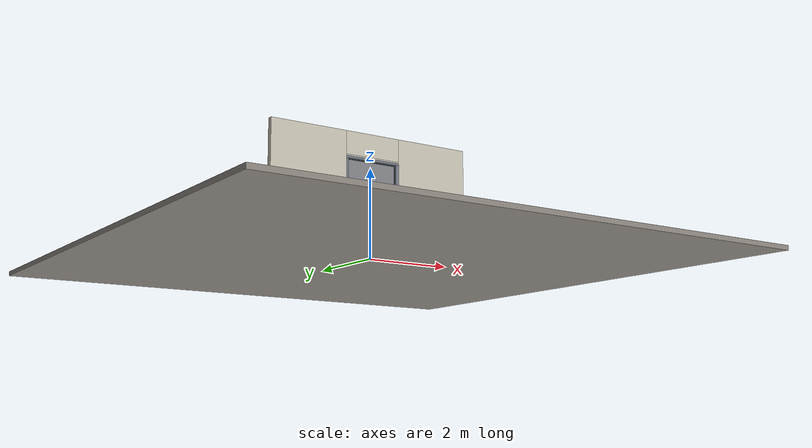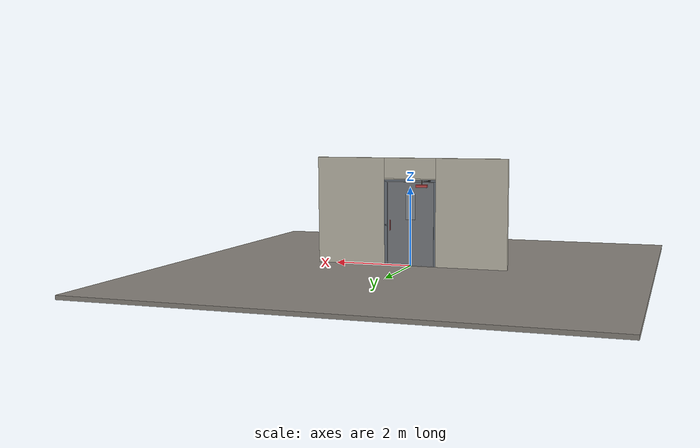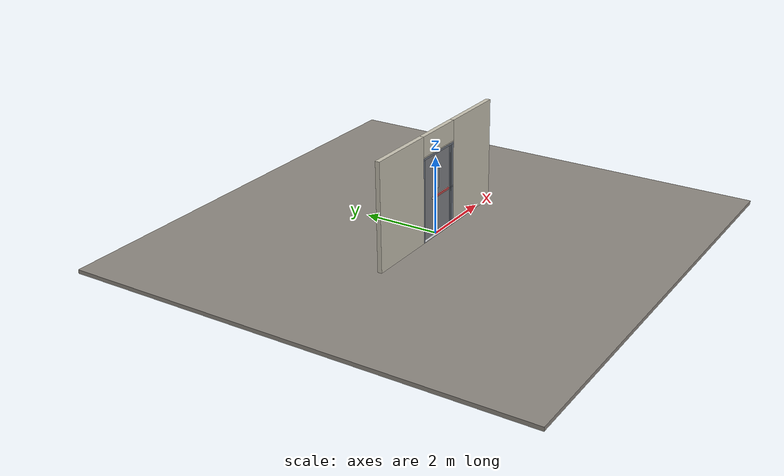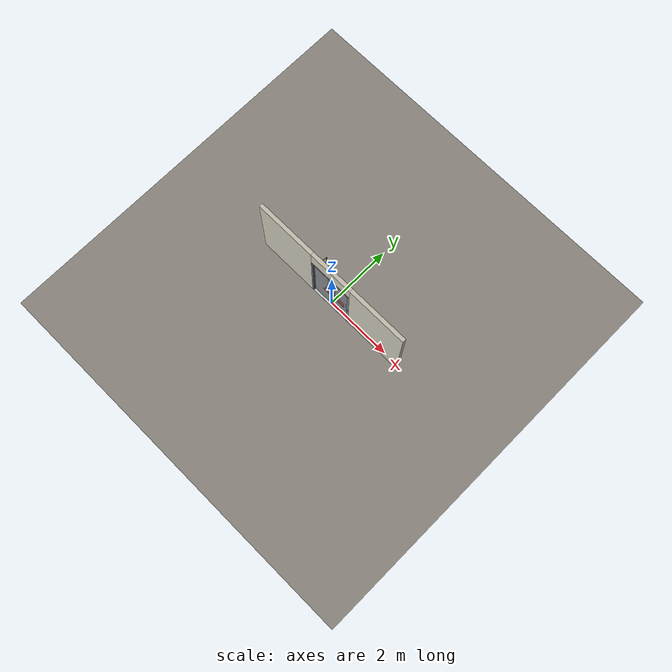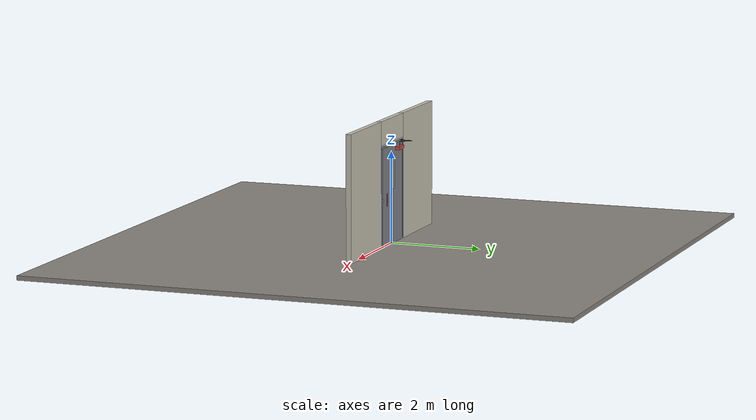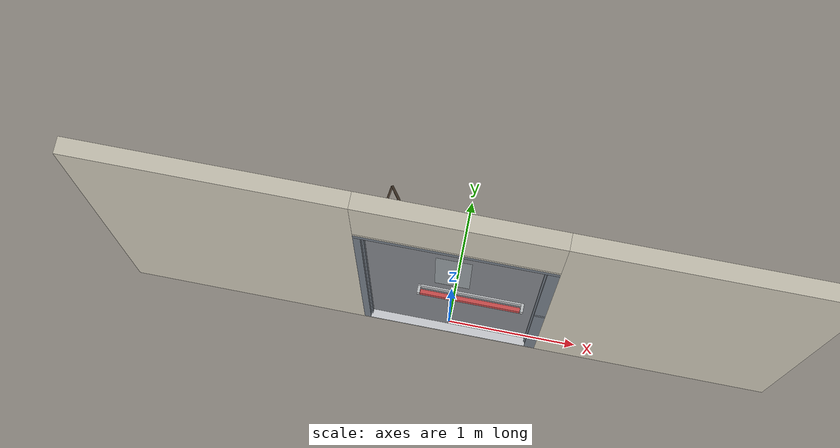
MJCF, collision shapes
<?xml version="1.0" ?>
<mujoco model="db0802_swing_single_full">
  <compiler angle="radian" meshdir="../../hardware" texturedir="../../textures" autolimits="true" inertiafromgeom="false"/>
  <option timestep="0.002" integrator="implicitfast" cone="elliptic" impratio="10" noslip_iterations="3">
    <flag multiccd="enable"/>
  </option>
  <size memory="16M"/>
  <default>
    <geom condim="4" solref="0.005 1" solimp="0.95 0.99 0.001"/>
    <joint solreflimit="0.005 1" solimplimit="0.95 0.99 0.001"/>
    <tendon solreflimit="0.005 1"/>
    <equality solref="0.002 1"/>
  </default>
  <visual>
    <headlight ambient="0.4 0.4 0.4" diffuse="0.7 0.7 0.7" specular="0.2 0.2 0.2"/>
    <quality shadowsize="4096"/>
    <map znear="0.01" zfar="60"/>
  </visual>
  <asset>
    <mesh name="closer_body_fdc4667657" file="closer_body_fdc4667657.obj"/>
    <mesh name="hinge_e22b26c0c1" file="hinge_e22b26c0c1.obj"/>
    <mesh name="hinge_jamb_e1d088f8dc" file="hinge_jamb_e1d088f8dc.obj"/>
    <mesh name="pull_f8d79d6331" file="pull_f8d79d6331.obj"/>
    <mesh name="touchbar_pad_75ca639615" file="touchbar_pad_75ca639615.obj"/>
    <material name="mat_floor" rgba="0.55 0.53 0.5 1" specular="0.2" shininess="0.15" reflectance="0"/>
    <material name="mat_wall" rgba="0.78 0.76 0.7 1" specular="0.2" shininess="0.1" reflectance="0"/>
    <material name="mat_leaf" rgba="0.5 0.51 0.53 1" specular="0.23" shininess="0.4" reflectance="0.02"/>
    <material name="mat_glass" rgba="0.85 0.92 0.95 0.25" specular="0.2" shininess="0.95" reflectance="0.1"/>
    <material name="mat_hinge" rgba="0.65 0.66 0.68 1" specular="0.74" shininess="0.5" reflectance="0.36"/>
    <material name="mat_op_stainless" rgba="0.75 0.76 0.77 1" specular="0.8" shininess="0.65" reflectance="0.4"/>
    <material name="mat_bolt" rgba="0.75 0.76 0.77 1" specular="0.8" shininess="0.65" reflectance="0.4"/>
    <material name="mat_frame" rgba="0.45 0.48 0.52 1" specular="0.32" shininess="0.6" reflectance="0.08"/>
    <material name="mat_seal" rgba="0.1 0.1 0.1 1" specular="0.2" shininess="0.1" reflectance="0"/>
    <material name="mat_threshold" rgba="0.8 0.81 0.83 1" specular="0.8" shininess="0.6" reflectance="0.4"/>
    <material name="mat_closer" rgba="0.22 0.17 0.13 1" specular="0.8" shininess="0.6" reflectance="0.4"/>
    <texture name="skybox" type="skybox" builtin="gradient" rgb1="0.6 0.7 0.85" rgb2="0.9 0.92 0.95" width="256" height="256"/>
  </asset>
  <worldbody>
    <light name="sun" pos="1.5 -2.5 4" dir="-0.3 0.5 -0.8" directional="true" diffuse="0.8 0.8 0.8" specular="0.3 0.3 0.3" castshadow="true"/>
    <light name="fill" pos="-1.5 2.5 3" dir="0.3 -0.5 -0.7" directional="true" diffuse="0.35 0.35 0.4" castshadow="false"/>
    <camera name="robot_view" pos="0 -2.666313 1.812087" xyaxes="1 0 0 0 0.26963 0.962964" fovy="52"/>
    <camera name="far_view" pos="0 2.609312 1.812087" xyaxes="-1 0 0 0 -0.26963 0.962964" fovy="52"/>
    <camera name="iso" pos="2.004737 -2.244263 2.234138" xyaxes="0.741536 0.670913 0 -0.242917 0.268487 0.932151" fovy="46"/>
    <camera name="detail_handle" pos="0.699 -0.703 1.32" xyaxes="0.97561 0.219512 0 -0.070934 0.315262 0.94635" fovy="38"/>
    <geom name="floor" type="box" size="6 6 0.05" pos="0 0 -0.05" material="mat_floor" group="0" contype="1" conaffinity="1" friction="0.8 0.005 0.0001" density="2400"/>
    <geom name="wall_left" type="box" size="0.9185 0.0575 1.3735" pos="-1.5815 -0.0285 1.3735" material="mat_wall" group="0" contype="1" conaffinity="1" friction="0.6 0.005 0.0001" density="800"/>
    <geom name="wall_right" type="box" size="0.9035 0.0575 1.3735" pos="1.5965 -0.0285 1.3735" material="mat_wall" group="0" contype="1" conaffinity="1" friction="0.6 0.005 0.0001" density="800"/>
    <geom name="wall_header" type="box" size="0.678 0.0575 0.26" pos="0.015 -0.0285 2.487" material="mat_wall" group="0" contype="1" conaffinity="1" friction="0.6 0.005 0.0001" density="800"/>
    <geom name="hinge_0_jamb" type="mesh" mesh="hinge_jamb_e1d088f8dc" pos="-0.61 0.029 0.267" quat="0 1 0 0" material="mat_hinge" group="1" contype="0" conaffinity="0" density="7850"/>
    <geom name="hinge_1_jamb" type="mesh" mesh="hinge_jamb_e1d088f8dc" pos="-0.61 0.029 1.08" quat="0 1 0 0" material="mat_hinge" group="1" contype="0" conaffinity="0" density="7850"/>
    <geom name="hinge_2_jamb" type="mesh" mesh="hinge_jamb_e1d088f8dc" pos="-0.61 0.029 1.963" quat="0 1 0 0" material="mat_hinge" group="1" contype="0" conaffinity="0" density="7850"/>
    <geom name="jamb_hinge" type="box" size="0.025 0.0575 1.0735" pos="-0.638 -0.0285 1.0735" material="mat_frame" group="0" contype="1" conaffinity="1" friction="0.6 0.005 0.0001" density="300"/>
    <geom name="strike_1040_wall_n" type="box" size="0.04 0.03825 0.018" pos="0.653 -0.04775 1.04" material="mat_frame" group="0" contype="1" conaffinity="1" friction="0.6 0.005 0.0001" density="300"/>
    <geom name="strike_1040_wall_p" type="box" size="0.04 0.008 0.018" pos="0.653 0.0175 1.04" material="mat_frame" group="0" contype="1" conaffinity="1" friction="0.6 0.005 0.0001" density="300"/>
    <geom name="strike_1040_ramp" type="box" size="0.04 0.018028 0.018" pos="0.656282 0.018312 1.04" quat="0.957092 0 0 -0.289784" material="mat_frame" group="0" contype="1" conaffinity="1" friction="0.12 0.005 0.0001" density="300"/>
    <geom name="strike_1040_back" type="box" size="0.0285 0.0095 0.018" pos="0.6645 0 1.04" material="mat_frame" group="0" contype="1" conaffinity="1" friction="0.6 0.005 0.0001" density="300"/>
    <geom name="jamb_strike_0" type="box" size="0.04 0.0575 0.511" pos="0.653 -0.0285 0.511" material="mat_frame" group="0" contype="1" conaffinity="1" friction="0.6 0.005 0.0001" density="300"/>
    <geom name="jamb_strike_1" type="box" size="0.04 0.0575 0.5445" pos="0.653 -0.0285 1.6025" material="mat_frame" group="0" contype="1" conaffinity="1" friction="0.6 0.005 0.0001" density="300"/>
    <geom name="jamb_head" type="box" size="0.678 0.0575 0.025" pos="0.015 -0.0285 2.172" material="mat_frame" group="0" contype="1" conaffinity="1" friction="0.6 0.005 0.0001" density="300"/>
    <geom name="head_stud" type="box" size="0.678 0.0575 0.015" pos="0.015 -0.0285 2.212" material="mat_wall" group="0" contype="1" conaffinity="1" friction="0.6 0.005 0.0001" density="500"/>
    <geom name="stop_hinge" type="box" size="0.0055 0.016 1.0735" pos="-0.6075 -0.0385 1.0735" material="mat_frame" group="0" contype="1" conaffinity="1" friction="0.6 0.005 0.0001" density="300"/>
    <geom name="stop_strike" type="box" size="0.0055 0.016 1.0735" pos="0.6075 -0.0385 1.0735" material="mat_frame" group="0" contype="1" conaffinity="1" friction="0.6 0.005 0.0001" density="300"/>
    <geom name="stop_head" type="box" size="0.613 0.016 0.0055" pos="0 -0.0385 2.1415" material="mat_frame" group="0" contype="1" conaffinity="1" friction="0.6 0.005 0.0001" density="300"/>
    <geom name="seal_hinge" type="box" size="0.004 0.004 1.0735" pos="-0.61 -0.026 1.0735" material="mat_seal" group="1" contype="0" conaffinity="0" density="1100"/>
    <geom name="seal_strike" type="box" size="0.004 0.004 1.0735" pos="0.61 -0.026 1.0735" material="mat_seal" group="1" contype="0" conaffinity="0" density="1100"/>
    <geom name="seal_head" type="box" size="0.593 0.004 0.008" pos="0 -0.026 2.135" material="mat_seal" group="1" contype="0" conaffinity="0" density="1100"/>
    <geom name="threshold" type="box" size="0.663 0.0575 0.0065" pos="0 -0.0285 0.0065" material="mat_threshold" group="0" contype="1" conaffinity="1" friction="0.5 0.005 0.0001" density="2700"/>
    <geom name="closer_bracket" type="box" size="0.03 0.012 0.014" pos="-0.513 0.041 2.177" material="mat_closer" group="1" contype="0" conaffinity="0" density="2700"/>
    <site name="approach_point" pos="0 -1.5 0" quat="1 0 0 0" size="0.05" rgba="0.2 0.9 0.2 0.5" group="4"/>
    <site name="goal_point" pos="0 1.5 0" quat="1 0 0 0" size="0.05" rgba="0.2 0.9 0.2 0.5" group="4"/>
    <site name="door_plane_center" pos="0 0 1.0735" quat="1 0 0 0" size="0.02" rgba="0.2 0.9 0.2 0.5" group="4"/>
    <body name="leaf" pos="-0.613 0 0">
      <inertial pos="0.568578 0.011747 1.22893" mass="84.655294" quat="0.533067 0.529538 0.458012 -0.475031" diaginertia="9.952782668 36.953397417 46.764079704"/>
      <joint name="leaf_hinge" type="hinge" axis="0 0 1" pos="0.003 0.029 0" limited="true" range="0 1.570796" solreflimit="0.02 1" damping="12.850995" frictionloss="3.074022" stiffness="17.354255" springref="-2.494489" armature="0.02"/>
      <geom name="leaf_slab" type="box" size="0.6095 0.022 1.063" pos="0.6125 0 1.08" material="mat_leaf" group="0" contype="1" conaffinity="1" friction="0.4 0.005 0.0001" density="1"/>
      <geom name="leaf_glass_0" type="box" size="0.125 0.0228 0.3189" pos="0.6125 0 1.5052" material="mat_glass" group="1" contype="0" conaffinity="0" density="1"/>
      <geom name="hinge_0" type="mesh" mesh="hinge_e22b26c0c1" pos="0.003 0.029 0.267" quat="0 1 0 0" material="mat_hinge" group="1" contype="0" conaffinity="0" density="7850"/>
      <geom name="hinge_1" type="mesh" mesh="hinge_e22b26c0c1" pos="0.003 0.029 1.08" quat="0 1 0 0" material="mat_hinge" group="1" contype="0" conaffinity="0" density="7850"/>
      <geom name="hinge_2" type="mesh" mesh="hinge_e22b26c0c1" pos="0.003 0.029 1.963" quat="0 1 0 0" material="mat_hinge" group="1" contype="0" conaffinity="0" density="7850"/>
      <geom name="leaf_exit_device_rail" type="box" size="0.3857 0.006 0.025" pos="0.7563 -0.028 1.04" material="mat_op_stainless" group="0" contype="1" conaffinity="1" friction="0.6 0.005 0.0001" density="3000"/>
      <geom name="leaf_exit_device_rail_end_n" type="box" size="0.01 0.0325 0.025" pos="0.3806 -0.0545 1.04" material="mat_op_stainless" group="0" contype="1" conaffinity="1" friction="0.6 0.005 0.0001" density="3000"/>
      <geom name="leaf_exit_device_rail_end_p" type="box" size="0.01 0.0325 0.025" pos="1.132 -0.0545 1.04" material="mat_op_stainless" group="0" contype="1" conaffinity="1" friction="0.6 0.005 0.0001" density="3000"/>
      <geom name="leaf_far_pull_p" type="mesh" mesh="pull_f8d79d6331" pos="1.132 0.022 1.04" quat="-0.707107 0.707107 0 0" material="mat_op_stainless" group="1" contype="0" conaffinity="0" density="3000"/>
      <geom name="leaf_far_pull_col_p" type="capsule" size="0.0125 0.13" pos="1.132 0.097 1.04" material="mat_op_stainless" group="3" contype="1" conaffinity="1" rgba="0.8 0.3 0.3 0.25" friction="0.7 0.01 0.0001" density="3000"/>
      <geom name="leaf_latch_bolt_faceplate" type="box" size="0.0006 0.014 0.028" pos="1.2214 0 1.04" material="mat_bolt" group="1" contype="0" conaffinity="0" density="8500"/>
      <geom name="closer_body" type="mesh" mesh="closer_body_fdc4667657" pos="0.3 0.022 2.046" quat="-0.707107 0.707107 0 0" material="mat_closer" group="1" contype="0" conaffinity="0" density="2000"/>
      <geom name="closer_body_col" type="box" size="0.145 0.05 0.035" pos="0.3 0.072 2.046" material="mat_closer" group="3" contype="1" conaffinity="1" rgba="0.8 0.3 0.3 0.25" friction="0.6 0.005 0.0001" density="2000"/>
      <geom name="closer_pinion_shaft" type="cylinder" size="0.008 0.0655" pos="0.3 0.072 2.1115" material="mat_closer" group="1" contype="0" conaffinity="0" density="2700"/>
      <site name="leaf_far_pull_grip_p" pos="1.132 0.097 1.04" quat="1 0 0 0" size="0.012" rgba="0.2 0.9 0.2 0.5" group="4"/>
      <site name="leaf_edge_mid" pos="1.222 0 1.063" quat="1 0 0 0" size="0.02" rgba="0.2 0.9 0.2 0.5" group="4"/>
      <body name="leaf_exit_device" pos="0.7563 -0.022 1.04">
        <inertial pos="0 -0.05 0" mass="5.87574" quat="0 0 0.707107 0.707107" diaginertia="0.001432212 0.258094406 0.258645257"/>
        <joint name="leaf_exit_device_slide" type="slide" axis="0 1 0" limited="true" range="0 0.016" damping="177.013694" frictionloss="0.5" stiffness="1300" springref="-0.015385" armature="0.15"/>
        <geom name="leaf_exit_device_pad" type="mesh" mesh="touchbar_pad_75ca639615" pos="0 0 0" quat="0.707107 0.707107 0 0" material="mat_op_stainless" group="1" contype="0" conaffinity="0" density="3000"/>
        <geom name="leaf_exit_device_pad_col" type="box" size="0.3627 0.015 0.0225" pos="0 -0.05 0" material="mat_op_stainless" group="3" contype="1" conaffinity="1" rgba="0.8 0.3 0.3 0.25" friction="0.8 0.01 0.0001" density="3000"/>
        <site name="leaf_exit_device_push" pos="0 -0.065 0" quat="1 0 0 0" size="0.015" rgba="0.2 0.9 0.2 0.5" group="4"/>
      </body>
      <body name="leaf_latch_bolt" pos="1.222 0 1.04">
        <inertial pos="-0.0055 0 0" mass="0.074627" quat="0.92388 -0.382683 0 0" diaginertia="0.000002271 0.000013255 0.000013255"/>
        <joint name="leaf_latch_bolt_slide" type="slide" axis="-1 0 0" limited="true" range="0 0.019" damping="2" frictionloss="0.3" stiffness="550" springref="-0.01" armature="0.1"/>
        <geom name="leaf_latch_bolt_capsule" type="capsule" size="0.008 0.0165" pos="-0.0055 0 0" quat="0.707107 0 0.707107 0" material="mat_bolt" group="0" contype="1" conaffinity="1" friction="0.2 0.005 0.0001" density="8500"/>
      </body>
      <body name="closer_arm_main" pos="0.3 0.072 2.177" quat="0.454107 0 0 0.890947">
        <inertial pos="0.14 0 0" mass="0.12096" quat="1 0 0 0" diaginertia="0.000003588 0.00079128 0.000792852"/>
        <joint name="closer_pinion" type="hinge" axis="0 0 1" limited="false" damping="0.01" armature="0.002"/>
        <geom name="closer_arm_main_geom" type="box" size="0.14 0.008 0.005" pos="0.14 0 0" material="mat_closer" group="1" contype="0" conaffinity="0" density="2700"/>
        <body name="closer_arm_fore" pos="0.28 0 0" quat="-0.373215 0 0 -0.927745">
          <inertial pos="0.128088 0 0" mass="0.076531" quat="1 0 0 0" diaginertia="0.000001771 0.000437665 0.000438201"/>
          <joint name="closer_elbow" type="hinge" axis="0 0 1" limited="false" damping="0.01" armature="0.002"/>
          <geom name="closer_arm_fore_geom" type="box" size="0.1125 0.007 0.004" pos="0.1125 0 0" material="mat_closer" group="1" contype="0" conaffinity="0" density="2700"/>
          <geom name="closer_fore_neck" type="box" size="0.0175 0.003 0.003" pos="0.2425 0 0" material="mat_closer" group="1" contype="0" conaffinity="0" density="2700"/>
          <geom name="closer_fore_pivot" type="cylinder" size="0.005 0.012" pos="0.26 0 0" material="mat_closer" group="1" contype="0" conaffinity="0" density="2700"/>
        </body>
      </body>
    </body>
  </worldbody>
  <tendon>
    <fixed name="leaf_latch_bolt_coupling" limited="true" range="0 10">
      <joint joint="leaf_latch_bolt_slide" coef="1"/>
      <joint joint="leaf_exit_device_slide" coef="-1.357143"/>
    </fixed>
  </tendon>
  <equality>
    <connect name="closer_arm_connect" body1="closer_arm_fore" body2="world" anchor="0.26 0 0" active="true"/>
  </equality>
  <contact>
    <exclude body1="closer_arm_main" body2="leaf"/>
    <exclude body1="closer_arm_fore" body2="leaf"/>
    <exclude body1="closer_arm_main" body2="closer_arm_fore"/>
  </contact>
  <sensor>
    <jointpos name="leaf_hinge_pos" joint="leaf_hinge"/>
    <jointvel name="leaf_hinge_vel" joint="leaf_hinge"/>
    <jointpos name="leaf_exit_device_slide_pos" joint="leaf_exit_device_slide"/>
    <jointvel name="leaf_exit_device_slide_vel" joint="leaf_exit_device_slide"/>
    <jointpos name="leaf_latch_bolt_slide_pos" joint="leaf_latch_bolt_slide"/>
    <jointvel name="leaf_latch_bolt_slide_vel" joint="leaf_latch_bolt_slide"/>
  </sensor>
</mujoco>
